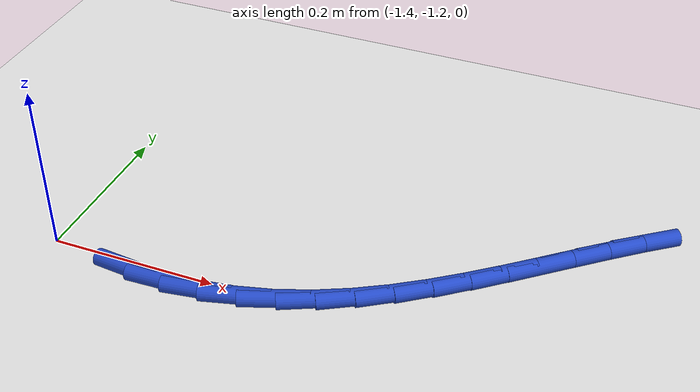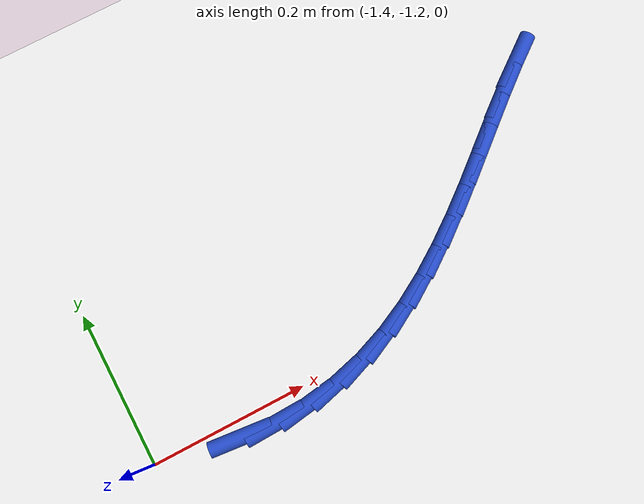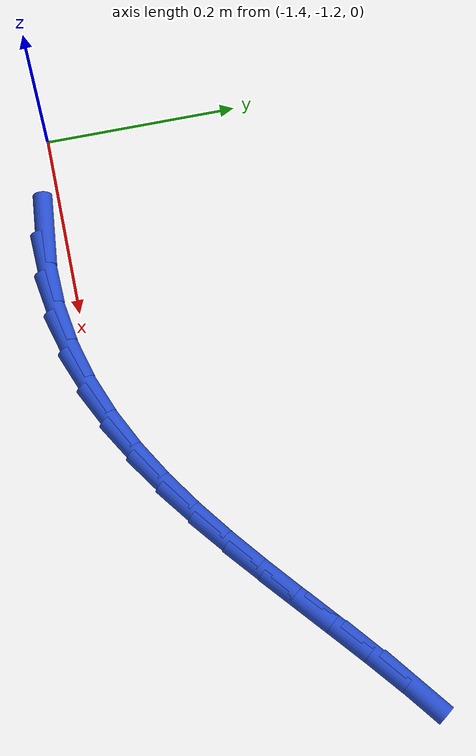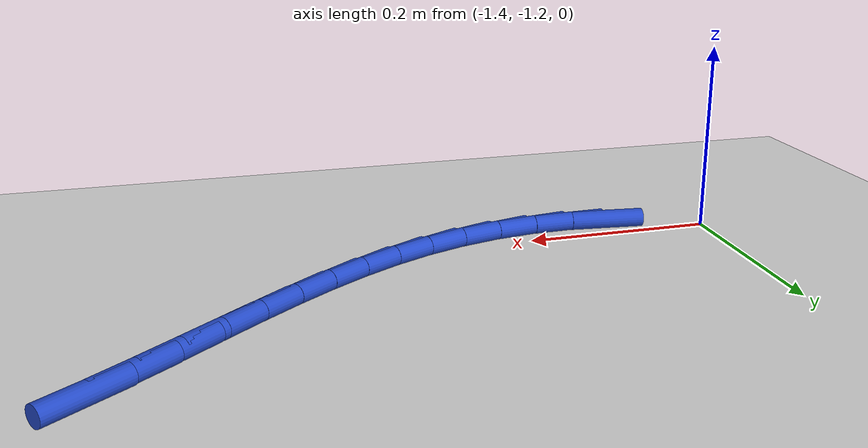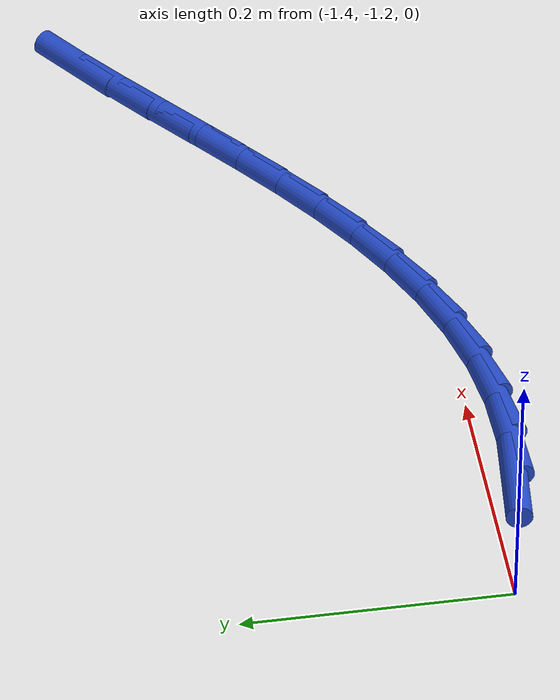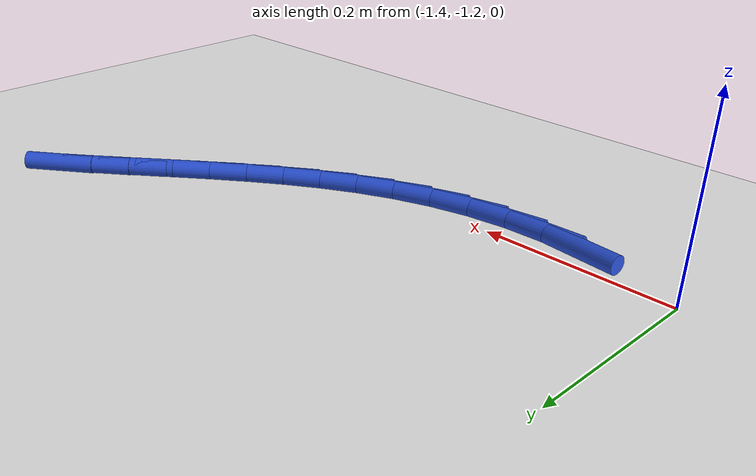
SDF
<sdf version="1.6">
 <world name="default">
  <model name="ground_plane">
   <static>1</static>
   <link name="link">
    <collision name="collision">
     <geometry><plane><normal>0 0 1</normal><size>100 100</size></plane></geometry>
     <surface><friction><ode><mu>100</mu><mu2>50</mu2></ode></friction></surface>
    </collision>
    <visual name="visual">
     <cast_shadows>0</cast_shadows>
     <geometry><plane><normal>0 0 1</normal><size>100 100</size></plane></geometry>
     <material>
      <script><uri>file://media/materials/scripts/gazebo.material</uri><name>Gazebo/WhiteGlow</name></script>
     </material>
    </visual>
   </link>
  </model>
  <model name="line">
   <link name="link_135">
    <pose>-1.2936564018061485 -1.219257185032829 0.01 0 1.57 -0.09970631217358758</pose>
    <collision name="collision">
     <geometry><cylinder><radius>0.01</radius><length>0.08</length></cylinder></geometry>
    </collision>
    <visual name="visual">
     <material>
      <script><name>Gazebo/Blue</name><uri>file://media/materials/scripts/gazebo.material</uri></script>
     </material>
     <geometry><cylinder><radius>0.01</radius><length>0.08</length></cylinder></geometry>
    </visual>
   </link>
   <link name="link_136">
    <pose>-1.2503014297344768 -1.223594331308032 0.01 0 1.57 0.030648343399560612</pose>
    <collision name="collision">
     <geometry><cylinder><radius>0.01</radius><length>0.08</length></cylinder></geometry>
    </collision>
    <visual name="visual">
     <material>
      <script><name>Gazebo/Blue</name><uri>file://media/materials/scripts/gazebo.material</uri></script>
     </material>
     <geometry><cylinder><radius>0.01</radius><length>0.08</length></cylinder></geometry>
    </visual>
   </link>
   <link name="link_137">
    <pose>-1.2064205687342882 -1.2222490343631804 0.01 0 1.57 0.14701311643106307</pose>
    <collision name="collision">
     <geometry><cylinder><radius>0.01</radius><length>0.08</length></cylinder></geometry>
    </collision>
    <visual name="visual">
     <material>
      <script><name>Gazebo/Blue</name><uri>file://media/materials/scripts/gazebo.material</uri></script>
     </material>
     <geometry><cylinder><radius>0.01</radius><length>0.08</length></cylinder></geometry>
    </visual>
   </link>
   <link name="link_138">
    <pose>-1.1632313034538087 -1.2158535041276337 0.01 0 1.57 0.25575027368823283</pose>
    <collision name="collision">
     <geometry><cylinder><radius>0.01</radius><length>0.08</length></cylinder></geometry>
    </collision>
    <visual name="visual">
     <material>
      <script><name>Gazebo/Blue</name><uri>file://media/materials/scripts/gazebo.material</uri></script>
     </material>
     <geometry><cylinder><radius>0.01</radius><length>0.08</length></cylinder></geometry>
    </visual>
   </link>
   <link name="link_139">
    <pose>-1.1218346038563614 -1.205029253073315 0.01 0 1.57 0.3572159276011864</pose>
    <collision name="collision">
     <geometry><cylinder><radius>0.01</radius><length>0.08</length></cylinder></geometry>
    </collision>
    <visual name="visual">
     <material>
      <script><name>Gazebo/Blue</name><uri>file://media/materials/scripts/gazebo.material</uri></script>
     </material>
     <geometry><cylinder><radius>0.01</radius><length>0.08</length></cylinder></geometry>
    </visual>
   </link>
   <link name="link_140">
    <pose>-1.0824039365789064 -1.190312637647709 0.01 0 1.57 0.44753769543826427</pose>
    <collision name="collision">
     <geometry><cylinder><radius>0.01</radius><length>0.08</length></cylinder></geometry>
    </collision>
    <visual name="visual">
     <material>
      <script><name>Gazebo/Blue</name><uri>file://media/materials/scripts/gazebo.material</uri></script>
     </material>
     <geometry><cylinder><radius>0.01</radius><length>0.08</length></cylinder></geometry>
    </visual>
   </link>
   <link name="link_141">
    <pose>-1.0446695812776376 -1.1721993243726756 0.01 0 1.57 0.5246455950629513</pose>
    <collision name="collision">
     <geometry><cylinder><radius>0.01</radius><length>0.08</length></cylinder></geometry>
    </collision>
    <visual name="visual">
     <material>
      <script><name>Gazebo/Blue</name><uri>file://media/materials/scripts/gazebo.material</uri></script>
     </material>
     <geometry><cylinder><radius>0.01</radius><length>0.08</length></cylinder></geometry>
    </visual>
   </link>
   <link name="link_142">
    <pose>-1.0083590658826067 -1.1511847271283313 0.01 0 1.57 0.5876290891023059</pose>
    <collision name="collision">
     <geometry><cylinder><radius>0.01</radius><length>0.08</length></cylinder></geometry>
    </collision>
    <visual name="visual">
     <material>
      <script><name>Gazebo/Blue</name><uri>file://media/materials/scripts/gazebo.material</uri></script>
     </material>
     <geometry><cylinder><radius>0.01</radius><length>0.08</length></cylinder></geometry>
    </visual>
   </link>
   <link name="link_143">
    <pose>-0.9731999183238674 -1.1277642597947926 0.01 0 1.57 0.6363826784500629</pose>
    <collision name="collision">
     <geometry><cylinder><radius>0.01</radius><length>0.08</length></cylinder></geometry>
    </collision>
    <visual name="visual">
     <material>
      <script><name>Gazebo/Blue</name><uri>file://media/materials/scripts/gazebo.material</uri></script>
     </material>
     <geometry><cylinder><radius>0.01</radius><length>0.08</length></cylinder></geometry>
    </visual>
   </link>
   <link name="link_144">
    <pose>-0.938919666531471 -1.102433336252175 0.01 0 1.57 0.6712346101497203</pose>
    <collision name="collision">
     <geometry><cylinder><radius>0.01</radius><length>0.08</length></cylinder></geometry>
    </collision>
    <visual name="visual">
     <material>
      <script><name>Gazebo/Blue</name><uri>file://media/materials/scripts/gazebo.material</uri></script>
     </material>
     <geometry><cylinder><radius>0.01</radius><length>0.08</length></cylinder></geometry>
    </visual>
   </link>
   <link name="link_145">
    <pose>-0.9052458384354704 -1.0756873703805951 0.01 0 1.57 0.6926523312882013</pose>
    <collision name="collision">
     <geometry><cylinder><radius>0.01</radius><length>0.08</length></cylinder></geometry>
    </collision>
    <visual name="visual">
     <material>
      <script><name>Gazebo/Blue</name><uri>file://media/materials/scripts/gazebo.material</uri></script>
     </material>
     <geometry><cylinder><radius>0.01</radius><length>0.08</length></cylinder></geometry>
    </visual>
   </link>
   <link name="link_146">
    <pose>-0.8719059619659174 -1.0480217760601687 0.01 0 1.57 0.7010502951359883</pose>
    <collision name="collision">
     <geometry><cylinder><radius>0.01</radius><length>0.08</length></cylinder></geometry>
    </collision>
    <visual name="visual">
     <material>
      <script><name>Gazebo/Blue</name><uri>file://media/materials/scripts/gazebo.material</uri></script>
     </material>
     <geometry><cylinder><radius>0.01</radius><length>0.08</length></cylinder></geometry>
    </visual>
   </link>
   <link name="link_147">
    <pose>-0.8386275650528653 -1.0199319671710123 0.01 0 1.57 0.6966874029367244</pose>
    <collision name="collision">
     <geometry><cylinder><radius>0.01</radius><length>0.08</length></cylinder></geometry>
    </collision>
    <visual name="visual">
     <material>
      <script><name>Gazebo/Blue</name><uri>file://media/materials/scripts/gazebo.material</uri></script>
     </material>
     <geometry><cylinder><radius>0.01</radius><length>0.08</length></cylinder></geometry>
    </visual>
   </link>
   <link name="link_148">
    <pose>-0.8051381756263648 -0.9919133575932408 0.01 0 1.57 0.6796343663679282</pose>
    <collision name="collision">
     <geometry><cylinder><radius>0.01</radius><length>0.08</length></cylinder></geometry>
    </collision>
    <visual name="visual">
     <material>
      <script><name>Gazebo/Blue</name><uri>file://media/materials/scripts/gazebo.material</uri></script>
     </material>
     <geometry><cylinder><radius>0.01</radius><length>0.08</length></cylinder></geometry>
    </visual>
   </link>
   <link name="link_149">
    <pose>-0.7711653216164704 -0.9644613612069721 0.01 0 1.57 0.6497990507178794</pose>
    <collision name="collision">
     <geometry><cylinder><radius>0.01</radius><length>0.08</length></cylinder></geometry>
    </collision>
    <visual name="visual">
     <material>
      <script><name>Gazebo/Blue</name><uri>file://media/materials/scripts/gazebo.material</uri></script>
     </material>
     <geometry><cylinder><radius>0.01</radius><length>0.08</length></cylinder></geometry>
    </visual>
   </link>
  </model>
 </world>
</sdf>
